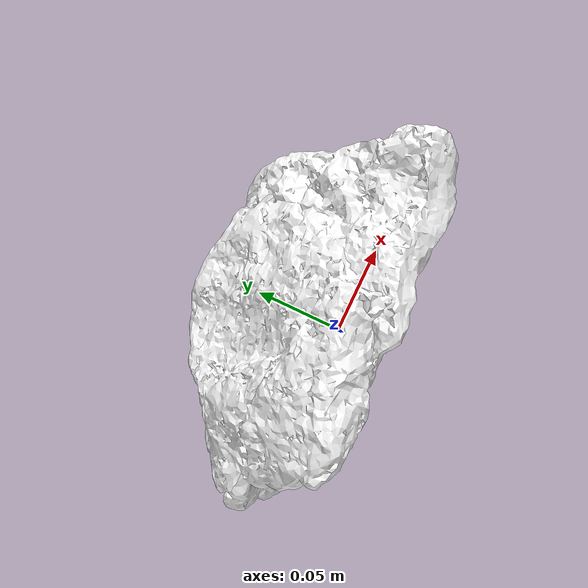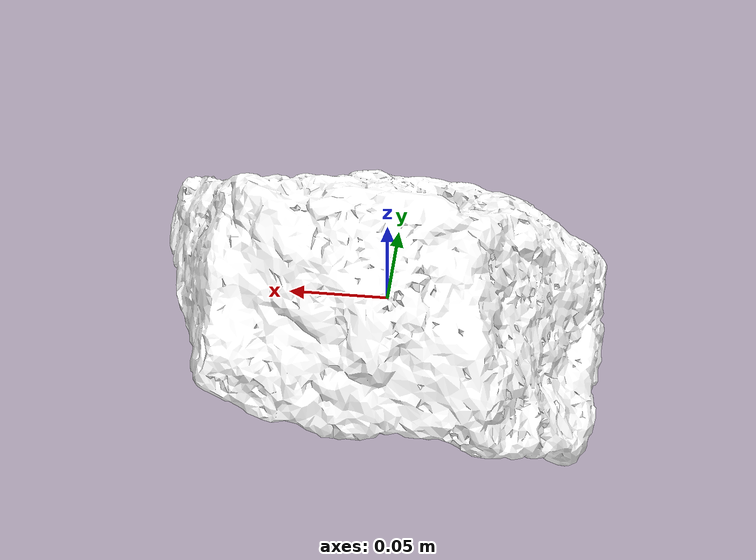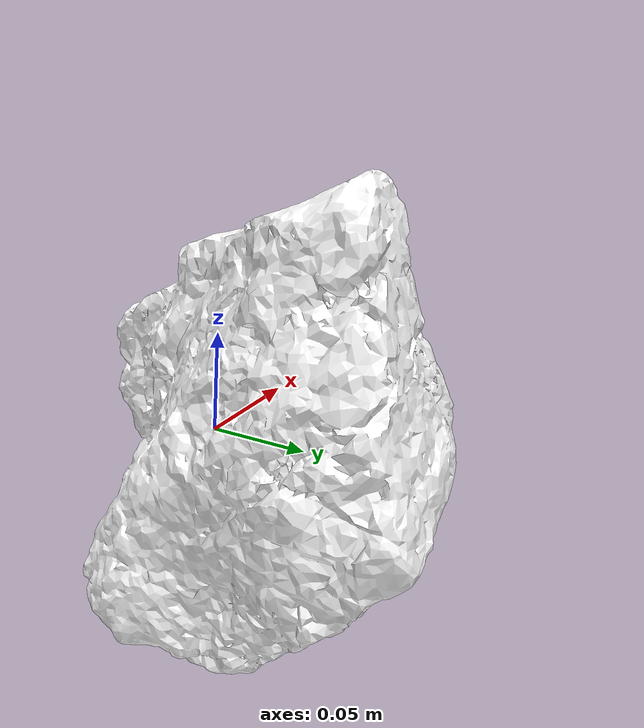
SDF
<?xml version="1.0" ?>
<sdf version="1.9">
  <model name="rock_5">
    <static>false</static>
    <link name="rock_link">
      <inertial>
        <mass>5000.0</mass>
        <inertia>
          <ixx>1000.0</ixx>
          <ixy>0.0</ixy>
          <ixz>0.0</ixz>
          <iyy>1000.0</iyy>
          <iyz>0.0</iyz>
          <izz>1000.0</izz>
        </inertia>
      </inertial>
      <!-- Visual -->
      <visual name="visual">
        <geometry>
          <mesh>
            <uri>model://rock_5/meshes/rock_5.obj</uri>
          </mesh>
        </geometry>
        <material>
          <ambient>1 1 1 1</ambient>
          <diffuse>1 1 1 1</diffuse>
          <pbr>
            <metal>
              <albedo_map>model://rock_5/meshes/rock_small_diffuse.jpg</albedo_map>
            </metal>
          </pbr>
        </material>
      </visual>
      <!-- Collision -->
      <collision name="collision">
        <geometry>
          <mesh>
            <uri>model://rock_5/meshes/rock_5.obj</uri>
          </mesh>
        </geometry>
      </collision>
    </link>
  </model>
</sdf>
